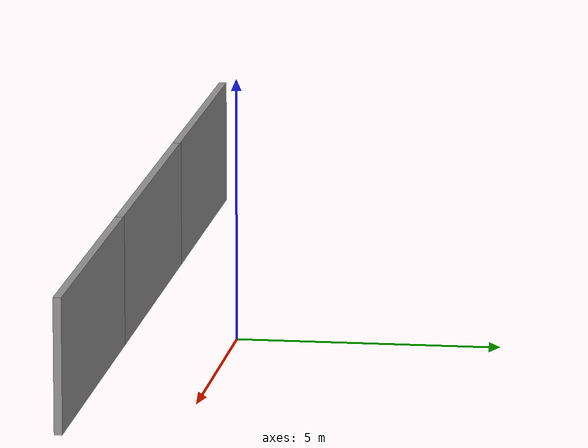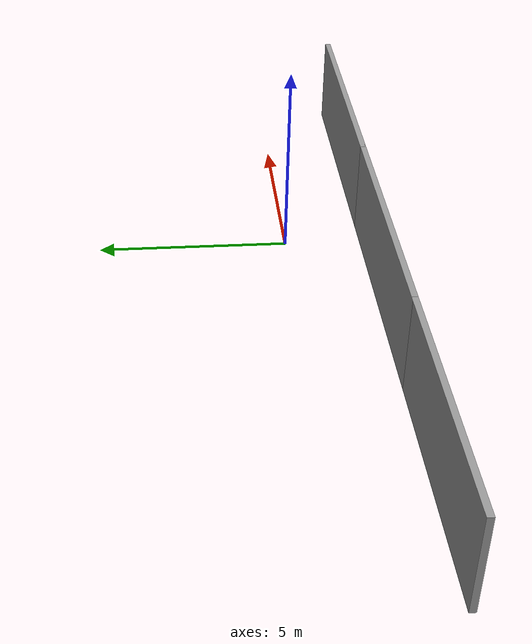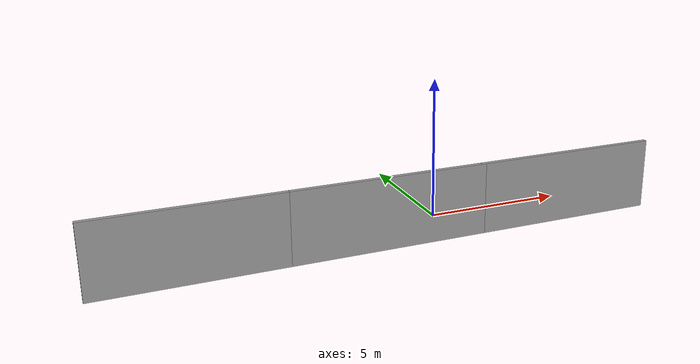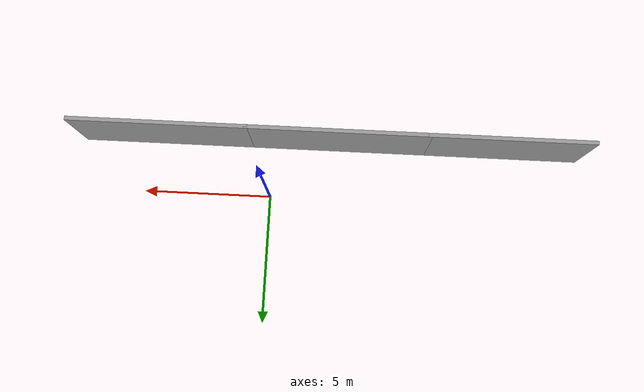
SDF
<?xml version='1.0'?>
<sdf version='1.7'>
  <model name='wall2'>
    <pose>-2.335 -1.0825 0 0 -0 0</pose>
    <link name='Wall_0'>
      <collision name='Wall_0_Collision'>
        <geometry>
          <box>
            <size>7 0.15 2.5</size>
          </box>
        </geometry>
        <pose>0 0 1.25 0 -0 0</pose>
      </collision>
      <visual name='Wall_0_Visual'>
        <pose>0 0 1.25 0 -0 0</pose>
        <geometry>
          <box>
            <size>7 0.15 2.5</size>
          </box>
        </geometry>
        <material>
          <script>
            <uri>file://media/materials/scripts/gazebo.material</uri>
            <name>Gazebo/Grey</name>
          </script>
          <ambient>1 1 1 1</ambient>
        </material>
        <meta>
          <layer>0</layer>
        </meta>
      </visual>
      <pose>-0.25 -1.0075 0 0 -0 3.14159</pose>
    </link>
    <link name='Wall_1'>
      <collision name='Wall_1_Collision'>
        <geometry>
          <box>
            <size>6.25 0.15 2.5</size>
          </box>
        </geometry>
        <pose>0 0 1.25 0 -0 0</pose>
      </collision>
      <visual name='Wall_1_Visual'>
        <pose>0 0 1.25 0 -0 0</pose>
        <geometry>
          <box>
            <size>6.25 0.15 2.5</size>
          </box>
        </geometry>
        <material>
          <script>
            <uri>file://media/materials/scripts/gazebo.material</uri>
            <name>Gazebo/Grey</name>
          </script>
          <ambient>1 1 1 1</ambient>
        </material>
        <meta>
          <layer>0</layer>
        </meta>
      </visual>
      <pose>-6.725 -1.0075 0 0 -0 3.14159</pose>
    </link>
    <link name='Wall_3'>
      <collision name='Wall_3_Collision'>
        <geometry>
          <box>
            <size>6.75 0.15 2.5</size>
          </box>
        </geometry>
        <pose>0 0 1.25 0 -0 0</pose>
      </collision>
      <visual name='Wall_3_Visual'>
        <pose>0 0 1.25 0 -0 0</pose>
        <geometry>
          <box>
            <size>6.75 0.15 2.5</size>
          </box>
        </geometry>
        <material>
          <script>
            <uri>file://media/materials/scripts/gazebo.material</uri>
            <name>Gazebo/Grey</name>
          </script>
          <ambient>1 1 1 1</ambient>
        </material>
        <meta>
          <layer>0</layer>
        </meta>
      </visual>
      <pose>6.475 -1.0075 0 0 -0 0</pose>
    </link>
    <static>1</static>
  </model>
</sdf>
